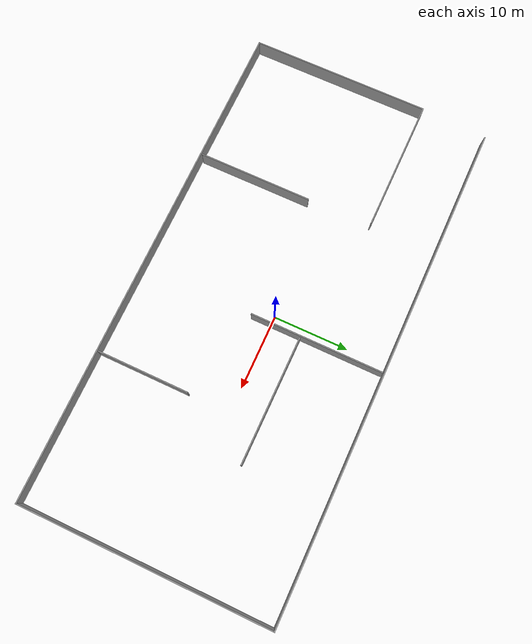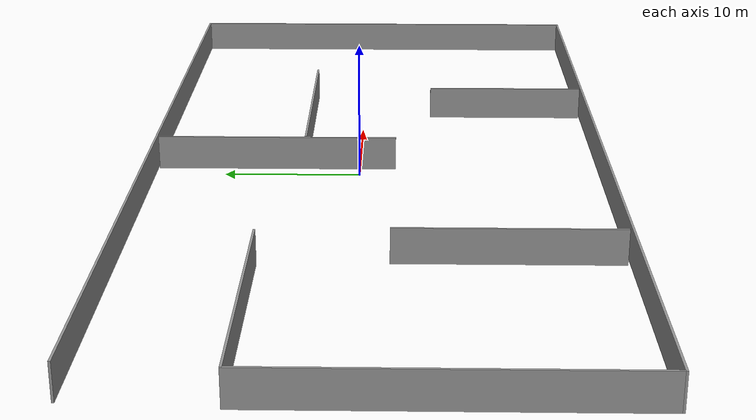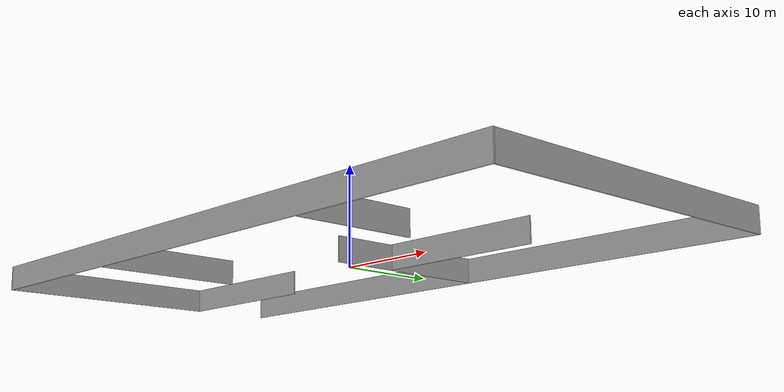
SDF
<?xml version='1.0'?>
<sdf version='1.7'>
  <model name='wall'>
    <pose>-0.16666 -1.28658 0 0 -0 0</pose>
    <link name='Wall_0'>
      <collision name='Wall_0_Collision'>
        <geometry>
          <box>
            <size>67 0.15 2.5</size>
          </box>
        </geometry>
        <pose>0 0 1.25 0 -0 0</pose>
      </collision>
      <visual name='Wall_0_Visual'>
        <pose>0 0 1.25 0 -0 0</pose>
        <geometry>
          <box>
            <size>67 0.15 2.5</size>
          </box>
        </geometry>
        <material>
          <script>
            <uri>file://media/materials/scripts/gazebo.material</uri>
            <name>Gazebo/Grey</name>
          </script>
          <ambient>1 1 1 1</ambient>
        </material>
        <meta>
          <layer>0</layer>
        </meta>
      </visual>
      <pose>0.250001 16.55 0 0 -0 0</pose>
    </link>
    <link name='Wall_1'>
      <collision name='Wall_1_Collision'>
        <geometry>
          <box>
            <size>33.25 0.15 2.5</size>
          </box>
        </geometry>
        <pose>0 0 1.25 0 -0 0</pose>
      </collision>
      <visual name='Wall_1_Visual'>
        <pose>0 0 1.25 0 -0 0</pose>
        <geometry>
          <box>
            <size>33.25 0.15 2.5</size>
          </box>
        </geometry>
        <material>
          <script>
            <uri>file://media/materials/scripts/gazebo.material</uri>
            <name>Gazebo/Grey</name>
          </script>
          <ambient>1 1 1 1</ambient>
        </material>
        <meta>
          <layer>0</layer>
        </meta>
      </visual>
      <pose>33.675 -0 0 0 -0 -1.5708</pose>
    </link>
    <link name='Wall_11'>
      <collision name='Wall_11_Collision'>
        <geometry>
          <box>
            <size>17 0.15 2.5</size>
          </box>
        </geometry>
        <pose>0 0 1.25 0 -0 0</pose>
      </collision>
      <visual name='Wall_11_Visual'>
        <pose>0 0 1.25 0 -0 0</pose>
        <geometry>
          <box>
            <size>17 0.15 2.5</size>
          </box>
        </geometry>
        <material>
          <script>
            <uri>file://media/materials/scripts/gazebo.material</uri>
            <name>Gazebo/Grey</name>
          </script>
          <ambient>1 1 1 1</ambient>
        </material>
        <meta>
          <layer>0</layer>
        </meta>
      </visual>
      <pose>10.2825 5.37792 0 0 -0 0</pose>
    </link>
    <link name='Wall_15'>
      <collision name='Wall_15_Collision'>
        <geometry>
          <box>
            <size>12.25 0.15 2.5</size>
          </box>
        </geometry>
        <pose>0 0 1.25 0 -0 0</pose>
      </collision>
      <visual name='Wall_15_Visual'>
        <pose>0 0 1.25 0 -0 0</pose>
        <geometry>
          <box>
            <size>12.25 0.15 2.5</size>
          </box>
        </geometry>
        <material>
          <script>
            <uri>file://media/materials/scripts/gazebo.material</uri>
            <name>Gazebo/Grey</name>
          </script>
          <ambient>1 1 1 1</ambient>
        </material>
        <meta>
          <layer>0</layer>
        </meta>
      </visual>
      <pose>13.668 -10.2778 0 0 -0 1.5708</pose>
    </link>
    <link name='Wall_2'>
      <collision name='Wall_2_Collision'>
        <geometry>
          <box>
            <size>67.5 0.15 2.5</size>
          </box>
        </geometry>
        <pose>0 0 1.25 0 -0 0</pose>
      </collision>
      <visual name='Wall_2_Visual'>
        <pose>0 0 1.25 0 -0 0</pose>
        <geometry>
          <box>
            <size>67.5 0.15 2.5</size>
          </box>
        </geometry>
        <material>
          <script>
            <uri>file://media/materials/scripts/gazebo.material</uri>
            <name>Gazebo/Grey</name>
          </script>
          <ambient>1 1 1 1</ambient>
        </material>
        <meta>
          <layer>0</layer>
        </meta>
      </visual>
      <pose>1e-06 -16.55 0 0 -0 3.14159</pose>
    </link>
    <link name='Wall_3'>
      <collision name='Wall_3_Collision'>
        <geometry>
          <box>
            <size>24.25 0.15 2.5</size>
          </box>
        </geometry>
        <pose>0 0 1.25 0 -0 0</pose>
      </collision>
      <visual name='Wall_3_Visual'>
        <pose>0 0 1.25 0 -0 0</pose>
        <geometry>
          <box>
            <size>24.25 0.15 2.5</size>
          </box>
        </geometry>
        <material>
          <script>
            <uri>file://media/materials/scripts/gazebo.material</uri>
            <name>Gazebo/Grey</name>
          </script>
          <ambient>1 1 1 1</ambient>
        </material>
        <meta>
          <layer>0</layer>
        </meta>
      </visual>
      <pose>-33.675 -4.5 0 0 -0 1.5708</pose>
    </link>
    <link name='Wall_5'>
      <collision name='Wall_5_Collision'>
        <geometry>
          <box>
            <size>18 0.15 2.5</size>
          </box>
        </geometry>
        <pose>0 0 1.25 0 -0 0</pose>
      </collision>
      <visual name='Wall_5_Visual'>
        <pose>0 0 1.25 0 -0 0</pose>
        <geometry>
          <box>
            <size>18 0.15 2.5</size>
          </box>
        </geometry>
        <material>
          <script>
            <uri>file://media/materials/scripts/gazebo.material</uri>
            <name>Gazebo/Grey</name>
          </script>
          <ambient>1 1 1 1</ambient>
        </material>
        <meta>
          <layer>0</layer>
        </meta>
      </visual>
      <pose>-24.75 7.55 0 0 -0 0</pose>
    </link>
    <link name='Wall_7'>
      <collision name='Wall_7_Collision'>
        <geometry>
          <box>
            <size>15.25 0.15 2.5</size>
          </box>
        </geometry>
        <pose>0 0 1.25 0 -0 0</pose>
      </collision>
      <visual name='Wall_7_Visual'>
        <pose>0 0 1.25 0 -0 0</pose>
        <geometry>
          <box>
            <size>15.25 0.15 2.5</size>
          </box>
        </geometry>
        <material>
          <script>
            <uri>file://media/materials/scripts/gazebo.material</uri>
            <name>Gazebo/Grey</name>
          </script>
          <ambient>1 1 1 1</ambient>
        </material>
        <meta>
          <layer>0</layer>
        </meta>
      </visual>
      <pose>-15.3795 -8.69805 0 0 -0 1.5708</pose>
    </link>
    <link name='Wall_9'>
      <collision name='Wall_9_Collision'>
        <geometry>
          <box>
            <size>17.75 0.15 2.5</size>
          </box>
        </geometry>
        <pose>0 0 1.25 0 -0 0</pose>
      </collision>
      <visual name='Wall_9_Visual'>
        <pose>0 0 1.25 0 -0 0</pose>
        <geometry>
          <box>
            <size>17.75 0.15 2.5</size>
          </box>
        </geometry>
        <material>
          <script>
            <uri>file://media/materials/scripts/gazebo.material</uri>
            <name>Gazebo/Grey</name>
          </script>
          <ambient>1 1 1 1</ambient>
        </material>
        <meta>
          <layer>0</layer>
        </meta>
      </visual>
      <pose>1.53826 7.5106 0 0 -0 -1.5708</pose>
    </link>
    <static>1</static>
  </model>
</sdf>
